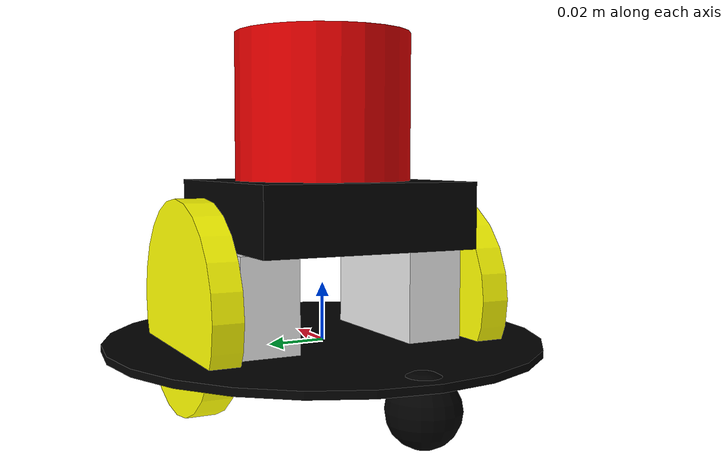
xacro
<?xml version="1.0" ?>
<robot name="popbot" xmlns:xacro="http://www.ros.org/wiki/xacro">

<xacro:include filename="$(find popbot)/urdf/pop-bot/robot.gazebo" />
<xacro:include filename="$(find popbot)/urdf/pop-bot/materials.xacro" />
<xacro:include filename="$(find popbot)/urdf/pop-bot/macros.xacro" />

  <link name="link_chassis">
    <!-- pose and inertial -->
    <pose>0 0 0.1 0 0 0</pose>
    <inertial>
      <mass value="5"/>
      <origin rpy="0 0 0" xyz="0 0 0.1"/>
      <inertia ixx="0.0395416666667" ixy="0" ixz="0" iyy="0.106208333333" iyz="0" izz="0.106208333333"/>
    </inertial>

    <!-- body -->
    <collision name="collision_chassis">
      <origin rpy="0 0 0" xyz="0 0 0"/>
      <geometry>
        <cylinder radius="0.075" length="0.0025"/>
      </geometry>
    </collision>
    <visual>
      <origin rpy="0 0 0" xyz="0 0 0"/>
      <geometry>
        <cylinder radius="0.075" length="0.0025"/>
      </geometry>
      <material name="Popbot/Black"/>
    </visual>

    <!-- box -->
    <collision name="box_colission">
      <origin rpy="0 0 0" xyz="0 0 0.04425"/>
      <geometry>
        <box size="0.075 0.075 0.022" />
      </geometry>
    </collision>
    <visual>
      <origin rpy="0 0 0" xyz="0 0 0.04425"/>
      <geometry>
        <box size="0.075 0.075 0.022" />
      </geometry>
      <material name="Popbot/Black"/>
    </visual>

    <!-- motor box left -->
    <collision name="motor_left_collision">
      <origin rpy="0 0 0" xyz="0 -0.03 0.01725"/>
      <geometry>
        <box size="0.05 0.02 0.032" />
      </geometry>
    </collision>
    <visual>
      <origin rpy="0 0 0" xyz="0 -0.03 0.01725"/>
      <geometry>
        <box size="0.05 0.02 0.032" />
      </geometry>
      <material name="Popbot/White"/>
    </visual>

    <!-- motor box right -->
    <collision name="motor_right_collision">
      <origin rpy="0 0 0" xyz="0 0.03 0.01725"/>
      <geometry>
        <box size="0.05 0.02 0.032" />
      </geometry>
    </collision>
    <visual>
      <origin rpy="0 0 0" xyz="0 0.03 0.01725"/>
      <geometry>
        <box size="0.05 0.02 0.032" />
      </geometry>
      <material name="Popbot/White"/>
    </visual>

    <!-- caster front -->
    <collision name="caster_front_collision">
      <origin rpy=" 0 0 0" xyz="0.065 0 -0.0085"/>
      <geometry>
        <sphere radius="0.01125"/>
      </geometry>
      <surface>
        <friction>
          <ode>
            <mu>0</mu>
            <mu2>0</mu2>
            <slip1>1.0</slip1>
            <slip2>1.0</slip2>
          </ode>
        </friction>
      </surface>
    </collision>
    <visual name="caster_front_visual">
      <origin rpy=" 0 0 0" xyz="0.065 0 -0.0085"/>
      <geometry>
        <sphere radius="0.01125"/>
      </geometry>
      <material name="Popbot/Black"/>
    </visual>

    <!-- caster rear -->
    <collision name="caster_rear_collision">
      <origin rpy=" 0 0 0" xyz="-0.065 0 -0.0085"/>
      <geometry>
        <sphere radius="0.01125"/>
      </geometry>
      <surface>
        <friction>
          <ode>
            <mu>0</mu>
            <mu2>0</mu2>
            <slip1>1.0</slip1>
            <slip2>1.0</slip2>
          </ode>
        </friction>
      </surface>
    </collision>
    <visual name="caster_rear_visual">
      <origin rpy=" 0 0 0" xyz="-0.065 0 -0.0085"/>
      <geometry>
        <sphere radius="0.01125"/>
      </geometry>
      <material name="Popbot/Black"/>
    </visual>
  </link>

  <!-- laser -->
  <link name="sensor_laser">
    <inertial>
      <origin xyz="0 0 0" rpy="0 0 0" />
      <mass value="1" />
      <xacro:cylinder_inertia mass="1" r="0.03" l="0.05" />
    </inertial>

    <visual>
      <origin xyz="0 0 0" rpy="0 0 0" />
      <geometry>
        <cylinder radius="0.03" length="0.05" />
      </geometry>
      <material name="Popbot/Red" />
    </visual>

    <collision>
      <origin xyz="0 0 0" rpy="0 0 0" />
      <geometry>
        <cylinder radius="0.03" length="0.05" />
      </geometry>
    </collision>
  </link>

  <joint name="joint_sensor_laser" type="fixed">
    <origin xyz="0 0 0.08" rpy="0 0 0" />
    <parent link="link_chassis" />
    <child link="sensor_laser" />
  </joint>

  <gazebo>
  <plugin
      filename="libignition-gazebo-sensors-system.so"
      name="ignition::gazebo::systems::Sensors">
      <render_engine>ogre</render_engine>
    </plugin>
  </gazebo>

  <gazebo reference="sensor_laser">
    <sensor name="sensor_laser" type="gpu_lidar">
      <topic>/model/my_custom_model/laserscan</topic>
      <always_on>true</always_on>
      <visualize>false</visualize>
      <pose>0 0 0 0 0 0</pose>
      <update_rate>10</update_rate>
      <always_on>1</always_on>
      <ray>
        <scan>
          <horizontal>
            <samples>720</samples>
            <resolution>1</resolution>
            <min_angle>-1.8326</min_angle>
            <max_angle>1.8326</max_angle>
          </horizontal>
        </scan>
        <range>
          <min>0.05</min>
          <max>20</max>
          <resolution>0.01</resolution>
        </range>
        <noise>
          <type>gaussian</type>
          <mean>0</mean>
          <stddev>0.01</stddev>
        </noise>
      </ray>
    </sensor>
  </gazebo>

  <!-- right wheel -->
  <xacro:link_wheel name="link_right_wheel" />
  <xacro:joint_wheel name="joint_right_wheel" child="link_right_wheel" origin_xyz="0 0.0475 0.015" />

  <!-- left wheel -->
  <xacro:link_wheel name="link_left_wheel" />
  <xacro:joint_wheel name="joint_left_wheel" child="link_left_wheel" origin_xyz="0 -0.0475 0.015" />

  <!-- imu -->
  <xacro:link_imu name="link_sensor_imu" />
  <xacro:joint_imu name="joint_sensor_imu" child="link_sensor_imu" origin_xyz="0.055 0 0.0025" rpy="0 0 0" />

</robot>

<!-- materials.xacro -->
<robot>
  <material name="Popbot/Black">
    <color rgba="0.0 0.0 0.0 1.0"/>
  </material>
  <material name="Popbot/Blue">
    <color rgba="0.0 0.0 0.9 1.0"/>
  </material>
  <material name="Popbot/Green">
    <color rgba="0.0 0.8 0.0 1.0"/>
  </material>
  <material name="Popbot/Grey">
    <color rgba="0.2 0.2 0.2 1.0"/>
  </material>
  <material name="Popbot/Orange">
    <color rgba="1.0 0.423529411765 0.0392156862745 1.0"/>
  </material>
  <material name="Popbot/Brown">
    <color rgba="0.870588235294 0.811764705882 0.764705882353 1.0"/>
  </material>
  <material name="Popbot/Yellow">
    <color rgba="1.0 1.0 0.0 1.0"/>
  </material>
  <material name="Popbot/Red">
    <color rgba="0.9 0.0 0.0 1.0"/>
  </material>
  <material name="Popbot/White">
    <color rgba="0.9 0.9 0.9 1.0"/>
  </material>
</robot>

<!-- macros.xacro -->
<robot xmlns:xacro="http://www.ros.org/wiki/xacro">
    <xacro:macro name="link_wheel" params="name">
      <link name="${name}">
          <inertial>
            <mass value="0.2"/>
            <origin rpy="0 1.5707 1.5707" xyz="0 0 0"/>
            <inertia ixx="0.000526666666667" ixy="0" ixz="0" iyy="0.000526666666667" iyz="0" izz="0.001"/>
           </inertial>
           <collision name="${name}_collision">
             <origin rpy="0 1.5707 1.5707" xyz="0 0 0"/>
             <geometry>
               <cylinder length="0.01" radius="0.035"/>
             </geometry>
           </collision>
           <visual name="${name}_visual">
             <origin rpy="0 1.5707 1.5707" xyz="0 0 0"/>
             <geometry>
               <cylinder length="0.01" radius="0.035"/>
             </geometry>
             <material name="Popbot/Yellow"/>
           </visual>
      </link>
    </xacro:macro>

    <xacro:macro name="joint_wheel" params="name child origin_xyz">
      <joint name="${name}" type="continuous">
        <origin rpy="0 0 0" xyz="${origin_xyz}"/>
        <child link="${child}"/>
        <parent link="link_chassis"/>
        <axis rpy="0 0 0" xyz="0 1 0"/>
        <limit effort="10000" velocity="1000"/>
        <joint_properties damping="1.0" friction="1.0"/>
      </joint>
    </xacro:macro>

    <xacro:macro name="link_imu" params="name">
      <link name="${name}">
        <inertial>
          <mass value="0.001" />
          <origin xyz="0 0 0" rpy="0 0 0" />
          <inertia ixx="0.00000015" ixy="0" ixz="0" iyy="0.00000015" iyz="0" izz="0.00000015" />
        </inertial>
        <collision  name="${name}_collision">
          <origin xyz="0 0 0" rpy="0 0 0" />
          <geometry>
            <box size="0.001 0.02 0.015" />
          </geometry>
        </collision>
        <visual  name="${name}_visual">
          <origin xyz="0 0 0" rpy="0 0 0" />
          <geometry>
            <box size="0.001 0.02 0.015" />
          </geometry>
          <material name="Popbot/Green"/>
        </visual>
      </link>
    </xacro:macro>

    <xacro:macro name="joint_imu" params="name child origin_xyz rpy">
      <joint name="${name}" type="fixed">
        <origin xyz="${origin_xyz}" rpy="${rpy}" />
        <child link="${child}" />
        <parent link="link_chassis" />
        <axis xyz="0 0 1" />
      </joint>
    </xacro:macro>

    <xacro:macro name="cylinder_inertia" params="mass r l">
    <inertia  ixx="${mass*(3*r*r+l*l)/12}" ixy = "0" ixz = "0"
              iyy="${mass*(3*r*r+l*l)/12}" iyz = "0"
              izz="${mass*(r*r)/2}" />
    </xacro:macro>

</robot>
